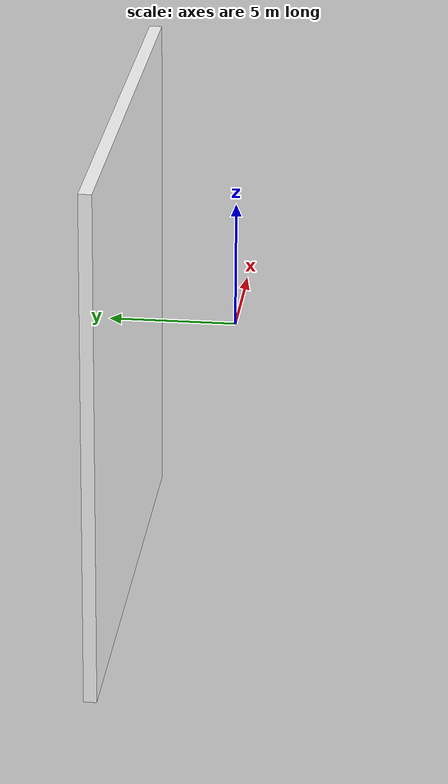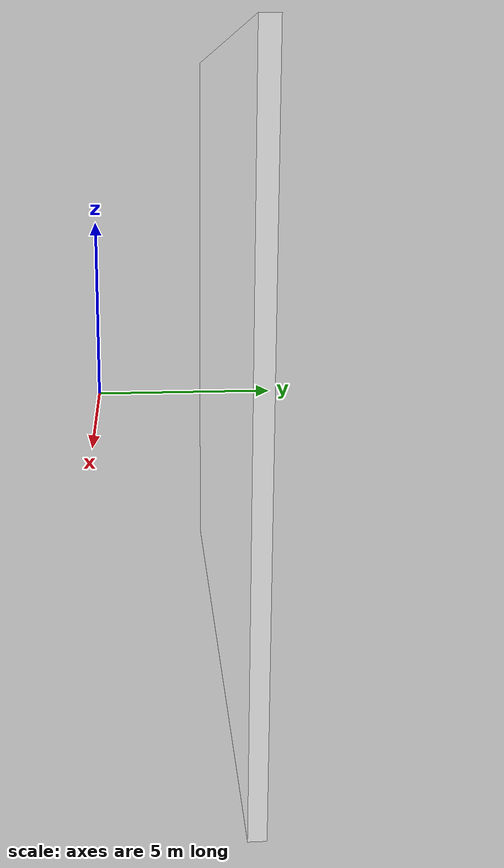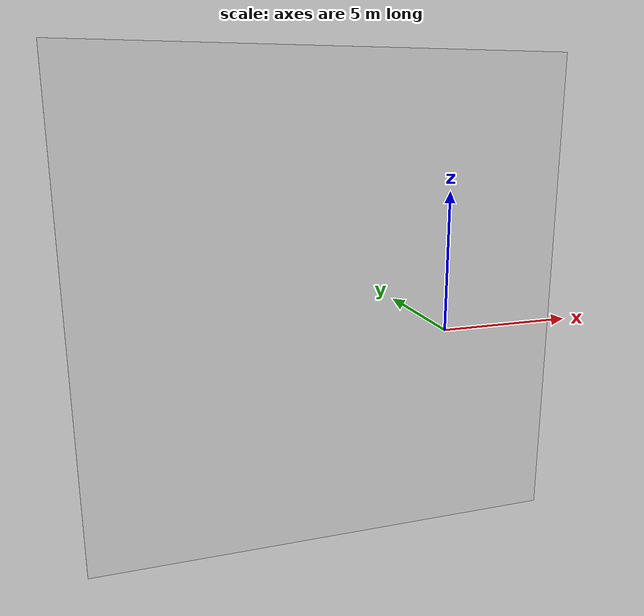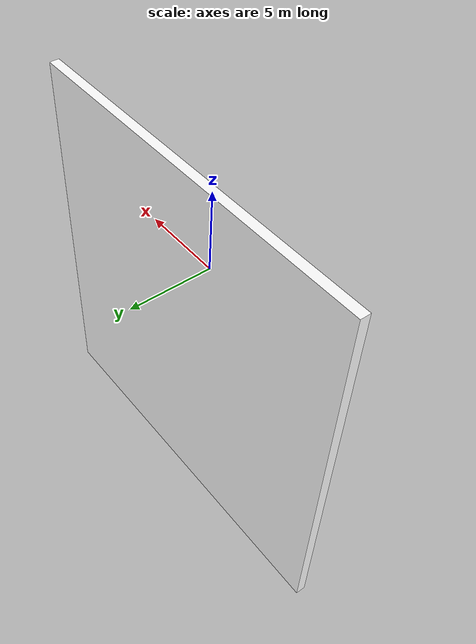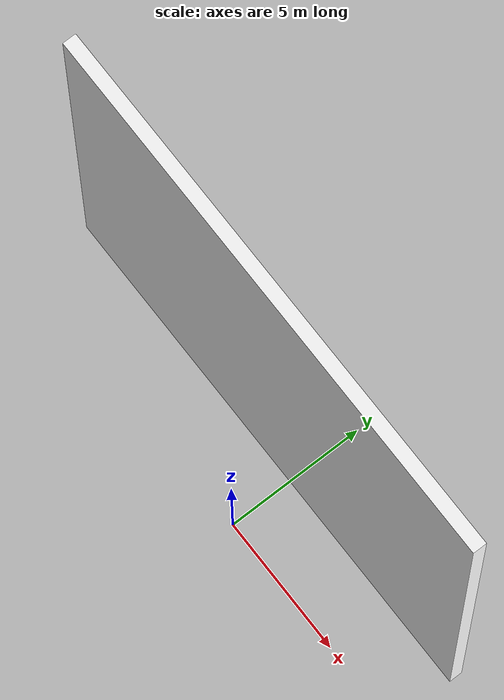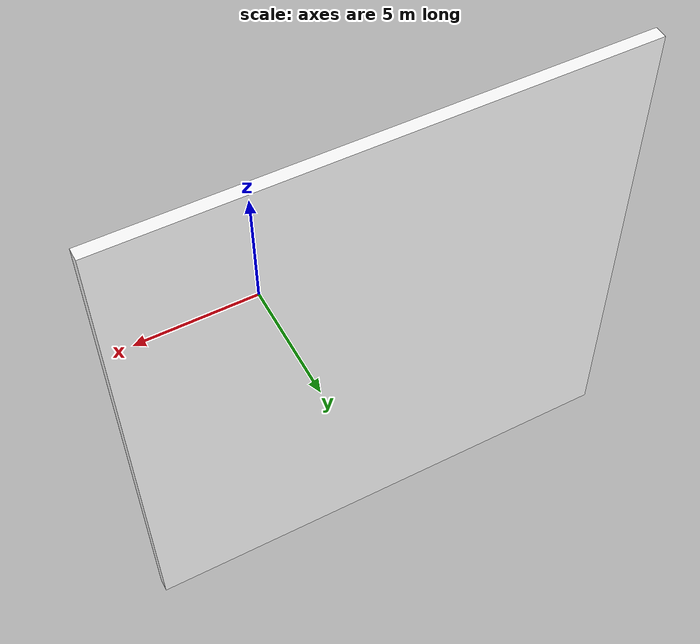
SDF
<?xml version ="1.0"?>
<sdf version="1.6">
  <model name="drone_world">
    <pose>-3.14159265359 4 0  1.57079632679 0 0</pose>
    <static>true</static>

    <link name="world1">
      <collision name="colision2">
        <geometry>
          <mesh>
            <uri>model://drone_world/meshes/world1.dae</uri>
          </mesh>
        </geometry>
      </collision>

      <visual name="visual2">
        <cast_shadows>true</cast_shadows>
        <geometry>
          <mesh>
            <uri>model://drone_world/meshes/world1.dae</uri>
          </mesh>
        </geometry>
        <material>
          <script>
            <uri>model://drone_world/materials/scripts</uri>
            <uri>model://drone_world/materials/textures</uri>
            <name>aruco/diffuse</name>
          </script>
          <ambient>1 1 1 1</ambient>
          <diffuse>1 1 1 1</diffuse>
          <specular>0 0 0 1</specular>
          <emissive>1 1 1 0</emissive>
          <shader type='vertex'>
            <normal_map>__default__</normal_map>
          </shader>
        </material>
      </visual>

    </link>

  </model>
</sdf>
